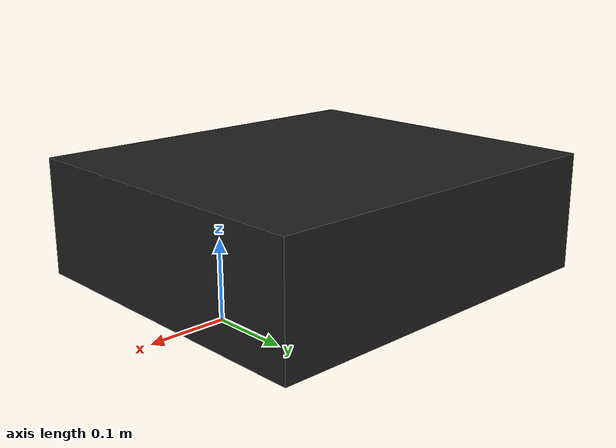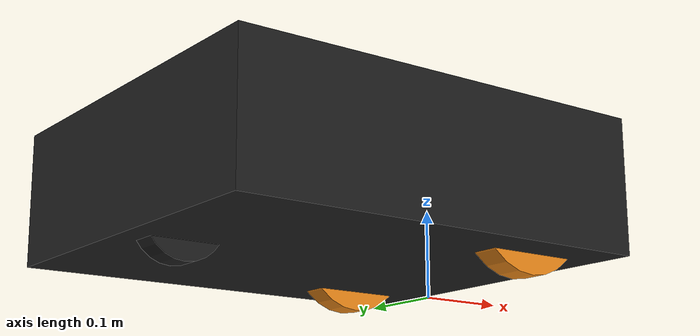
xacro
<?xml version="1.0"?>
<!-- Revolute-Revolute Manipulator -->
<robot name="icart_mini" xmlns:xacro="http://www.ros.org/wiki/xacro">
  <!-- Constants for robot dimensions -->
  <xacro:property name="PI" value="3.1415926535897931"/>

  <!-- Import Rviz colors -->
  <xacro:include filename="$(find icart_mini_description)/urdf/materials.xacro" />
  <xacro:include filename="$(find icart_mini_description)/urdf/icart_mini.gazebo"/>

  <!--Base Footprint-->
  <link name="base_footprint" />

  <joint name="base_joint" type="fixed">
    <origin xyz="0 0 0" />
    <parent link="base_footprint" />
    <child link="base_link" />
  </joint>

  <!-- Base Link -->
  <link name="base_link">
    <collision>
      <origin xyz="0.0 0.0 0.0" rpy="0 0 0"/>
      <geometry>
	    <box size=".485 .43 .15"/>
      </geometry>
    </collision>

    <visual>
      <origin xyz="-0.15 0 0.1" rpy="0 0 0"/>
      <geometry>
	    <box size=".485 .43 .15"/>
      </geometry>
    </visual>

    <collision name="collision">
      <origin xyz="0.0 0.0 0.0" rpy="0 0 0"/>
      <geometry>
        <cylinder  length="0.03" radius="0.04625"/>
      </geometry>
    </collision>
    <visual name="visual">
      <origin xyz="-0.325 0.0 0.05" rpy="0 1.5707 1.5707"/>
      <geometry>
        <cylinder  length="0.03" radius="0.04625"/>
      </geometry>
    </visual>

    <inertial>
       <mass value="20" />
       <origin xyz="-0.08 0 0" rpy="0 0 0"/>
       <inertia ixx="1" ixy="0" ixz="0" iyy="1" iyz="0" izz="1" />
    </inertial>
  </link>

  <link name="left_wheel">
    <collision name="collision">
      <origin xyz="0 0.0 0" rpy="0 1.5707 1.5707"/>
      <geometry>
         <cylinder  length="0.03" radius="0.0725"/>
      </geometry>
    </collision>
    <visual name="visual">
      <origin xyz="0 0.0 0" rpy="0 1.5707 1.5707"/>
      <geometry>
        <cylinder  length="0.03" radius="0.0725"/>
      </geometry>
    </visual>
    <inertial>
      <mass value="1" />
      <origin xyz="0 0.0 0"/>
      <inertia ixx="0.1" ixy="0" ixz="0" iyy="0.1" iyz="0" izz="0.1" />
    </inertial>
  </link>

  <joint type="revolute" name="left_wheel_hinge">
    <origin xyz="0 0.15 0.075" rpy="0 0 0"/>
    <child link="left_wheel">left_wheel</child>
    <parent link="base_link">base_link</parent>
    <axis xyz="0 1 0"/>
    <limit effort="100" velocity="100.0"  lower="-5000" upper="5000" />
  </joint>

  <link name="right_wheel">
    <collision name="collision">
      <origin xyz="0 0.0 0" rpy="0 1.5707 1.5707"/>
      <geometry>
         <cylinder  length="0.03" radius="0.0725"/>
      </geometry>
    </collision>
    <visual name="visual">
      <origin xyz="0 0.0 0" rpy="0 1.5707 1.5707"/>
      <geometry>
        <cylinder  length="0.03" radius="0.0725"/>
      </geometry>
    </visual>
    <inertial>
      <mass value="1" />
      <origin xyz="0 0.0 0"/>
      <inertia ixx="0.1" ixy="0" ixz="0" iyy="0.1" iyz="0" izz="0.1" />
    </inertial>
  </link>

  <joint type="revolute" name="right_wheel_hinge">
    <origin xyz="0 -0.15 0.075" rpy="0 0 0"/>
    <child link="right_wheel">right_wheel</child>
    <parent link="base_link">base_link</parent>
    <axis xyz="0 1 0"/>
    <limit effort="100" velocity="100.0"  lower="-5000" upper="5000" />
  </joint>

  <transmission name="tran1">
    <type>transmission_interface/SimpleTransmission</type>
    <joint name="left_wheel_hinge">
      <hardwareInterface>VelocityJointInterface</hardwareInterface>
    </joint>
    <actuator name="left_motor">
      <hardwareInterface>VelocityJointInterface</hardwareInterface>
      <mechanicalReduction>1</mechanicalReduction>
    </actuator>
  </transmission>

  <transmission name="tran2">
    <type>transmission_interface/SimpleTransmission</type>
    <joint name="right_wheel_hinge">
      <hardwareInterface>VelocityJointInterface</hardwareInterface>
    </joint>
    <actuator name="right_motor">
      <hardwareInterface>VelocityJointInterface</hardwareInterface>
      <mechanicalReduction>1</mechanicalReduction>
    </actuator>
  </transmission>
</robot>
